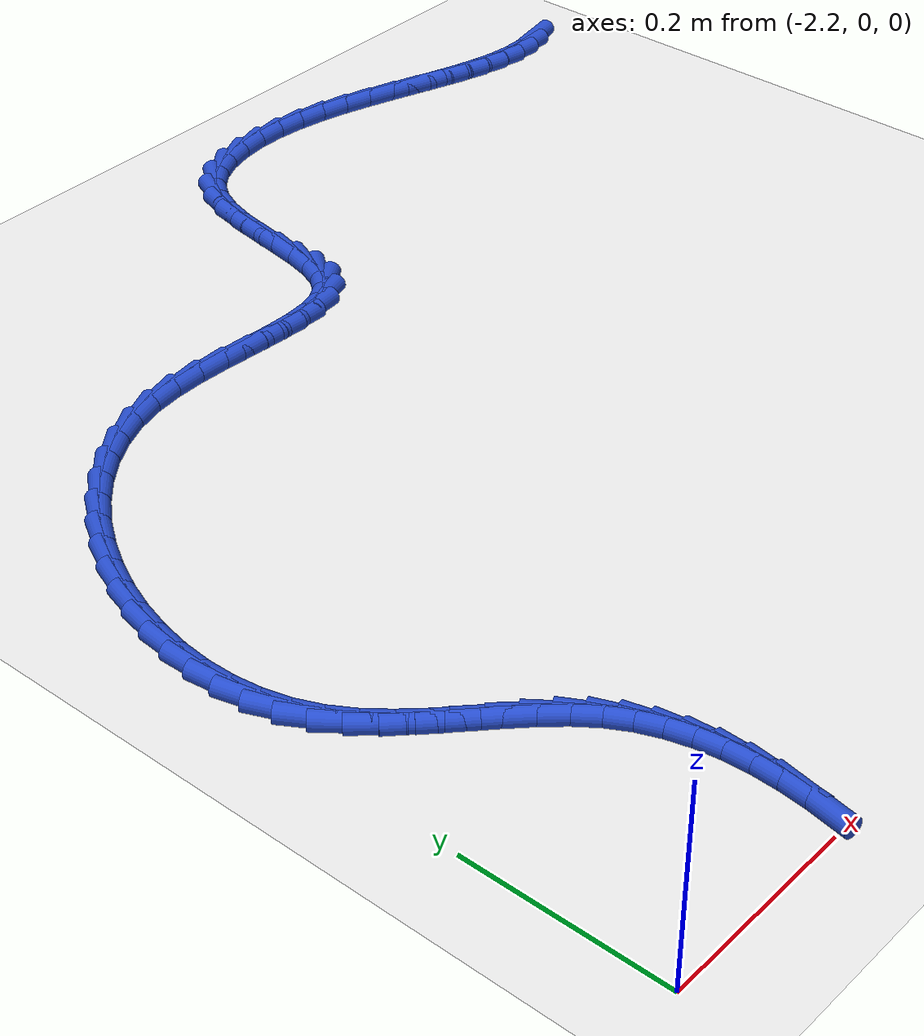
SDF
<sdf version="1.6">
 <world name="default">
  <model name="ground_plane">
   <static>1</static>
   <link name="link">
    <collision name="collision">
     <geometry><plane><normal>0 0 1</normal><size>100 100</size></plane></geometry>
     <surface><friction><ode><mu>100</mu><mu2>50</mu2></ode></friction></surface>
    </collision>
    <visual name="visual">
     <cast_shadows>0</cast_shadows>
     <geometry><plane><normal>0 0 1</normal><size>100 100</size></plane></geometry>
     <material>
      <script><uri>file://media/materials/scripts/gazebo.material</uri><name>Gazebo/WhiteGlow</name></script>
     </material>
    </visual>
   </link>
  </model>
  <model name="line">
   <link name="link_68">
    <pose>-1.128902015918738 0.9997562387554104 0.01 0 1.57 0.1784628266542008</pose>
    <collision name="collision">
     <geometry><cylinder><radius>0.01</radius><length>0.08</length></cylinder></geometry>
    </collision>
    <visual name="visual">
     <material>
      <script><name>Gazebo/Blue</name><uri>file://media/materials/scripts/gazebo.material</uri></script>
     </material>
     <geometry><cylinder><radius>0.01</radius><length>0.08</length></cylinder></geometry>
    </visual>
   </link>
   <link name="link_69">
    <pose>-1.1520053979540479 0.9955888068478382 0.01 0 1.57 0.02023123148100873</pose>
    <collision name="collision">
     <geometry><cylinder><radius>0.01</radius><length>0.08</length></cylinder></geometry>
    </collision>
    <visual name="visual">
     <material>
      <script><name>Gazebo/Blue</name><uri>file://media/materials/scripts/gazebo.material</uri></script>
     </material>
     <geometry><cylinder><radius>0.01</radius><length>0.08</length></cylinder></geometry>
    </visual>
   </link>
   <link name="link_70">
    <pose>-1.1761219607196456 0.9951008325057747 0.01 0 1.57 -0.1044988635622168</pose>
    <collision name="collision">
     <geometry><cylinder><radius>0.01</radius><length>0.08</length></cylinder></geometry>
    </collision>
    <visual name="visual">
     <material>
      <script><name>Gazebo/Blue</name><uri>file://media/materials/scripts/gazebo.material</uri></script>
     </material>
     <geometry><cylinder><radius>0.01</radius><length>0.08</length></cylinder></geometry>
    </visual>
   </link>
   <link name="link_71">
    <pose>-1.201182367129746 0.9977291907030209 0.01 0 1.57 -0.19719472050677767</pose>
    <collision name="collision">
     <geometry><cylinder><radius>0.01</radius><length>0.08</length></cylinder></geometry>
    </collision>
    <visual name="visual">
     <material>
      <script><name>Gazebo/Blue</name><uri>file://media/materials/scripts/gazebo.material</uri></script>
     </material>
     <geometry><cylinder><radius>0.01</radius><length>0.08</length></cylinder></geometry>
    </visual>
   </link>
   <link name="link_72">
    <pose>-1.2271172800985612 1.0029107564133763 0.01 0 1.57 -0.2620319175073464</pose>
    <collision name="collision">
     <geometry><cylinder><radius>0.01</radius><length>0.08</length></cylinder></geometry>
    </collision>
    <visual name="visual">
     <material>
      <script><name>Gazebo/Blue</name><uri>file://media/materials/scripts/gazebo.material</uri></script>
     </material>
     <geometry><cylinder><radius>0.01</radius><length>0.08</length></cylinder></geometry>
    </visual>
   </link>
   <link name="link_73">
    <pose>-1.2538573625403044 1.0100824046106411 0.01 0 1.57 -0.30329538065270734</pose>
    <collision name="collision">
     <geometry><cylinder><radius>0.01</radius><length>0.08</length></cylinder></geometry>
    </collision>
    <visual name="visual">
     <material>
      <script><name>Gazebo/Blue</name><uri>file://media/materials/scripts/gazebo.material</uri></script>
     </material>
     <geometry><cylinder><radius>0.01</radius><length>0.08</length></cylinder></geometry>
    </visual>
   </link>
   <link name="link_74">
    <pose>-1.2813332773691888 1.0186810102686155 0.01 0 1.57 -0.32435897336050806</pose>
    <collision name="collision">
     <geometry><cylinder><radius>0.01</radius><length>0.08</length></cylinder></geometry>
    </collision>
    <visual name="visual">
     <material>
      <script><name>Gazebo/Blue</name><uri>file://media/materials/scripts/gazebo.material</uri></script>
     </material>
     <geometry><cylinder><radius>0.01</radius><length>0.08</length></cylinder></geometry>
    </visual>
   </link>
   <link name="link_75">
    <pose>-1.3094756874994273 1.0281434483610994 0.01 0 1.57 -0.3274793681051528</pose>
    <collision name="collision">
     <geometry><cylinder><radius>0.01</radius><length>0.08</length></cylinder></geometry>
    </collision>
    <visual name="visual">
     <material>
      <script><name>Gazebo/Blue</name><uri>file://media/materials/scripts/gazebo.material</uri></script>
     </material>
     <geometry><cylinder><radius>0.01</radius><length>0.08</length></cylinder></geometry>
    </visual>
   </link>
   <link name="link_76">
    <pose>-1.338215255845233 1.037906593861893 0.01 0 1.57 -0.31388655361402984</pose>
    <collision name="collision">
     <geometry><cylinder><radius>0.01</radius><length>0.08</length></cylinder></geometry>
    </collision>
    <visual name="visual">
     <material>
      <script><name>Gazebo/Blue</name><uri>file://media/materials/scripts/gazebo.material</uri></script>
     </material>
     <geometry><cylinder><radius>0.01</radius><length>0.08</length></cylinder></geometry>
    </visual>
   </link>
   <link name="link_77">
    <pose>-1.3674826453208189 1.047407321744796 0.01 0 1.57 -0.2839534213955684</pose>
    <collision name="collision">
     <geometry><cylinder><radius>0.01</radius><length>0.08</length></cylinder></geometry>
    </collision>
    <visual name="visual">
     <material>
      <script><name>Gazebo/Blue</name><uri>file://media/materials/scripts/gazebo.material</uri></script>
     </material>
     <geometry><cylinder><radius>0.01</radius><length>0.08</length></cylinder></geometry>
    </visual>
   </link>
   <link name="link_78">
    <pose>-1.397208518840398 1.056082506983609 0.01 0 1.57 -0.23739386927225803</pose>
    <collision name="collision">
     <geometry><cylinder><radius>0.01</radius><length>0.08</length></cylinder></geometry>
    </collision>
    <visual name="visual">
     <material>
      <script><name>Gazebo/Blue</name><uri>file://media/materials/scripts/gazebo.material</uri></script>
     </material>
     <geometry><cylinder><radius>0.01</radius><length>0.08</length></cylinder></geometry>
    </visual>
   </link>
   <link name="link_79">
    <pose>-1.4273235393181836 1.0633690245521317 0.01 0 1.57 -0.17352077001351604</pose>
    <collision name="collision">
     <geometry><cylinder><radius>0.01</radius><length>0.08</length></cylinder></geometry>
    </collision>
    <visual name="visual">
     <material>
      <script><name>Gazebo/Blue</name><uri>file://media/materials/scripts/gazebo.material</uri></script>
     </material>
     <geometry><cylinder><radius>0.01</radius><length>0.08</length></cylinder></geometry>
    </visual>
   </link>
   <link name="link_80">
    <pose>-1.4577583696683878 1.0687037494241642 0.01 0 1.57 -0.091637704188161</pose>
    <collision name="collision">
     <geometry><cylinder><radius>0.01</radius><length>0.08</length></cylinder></geometry>
    </collision>
    <visual name="visual">
     <material>
      <script><name>Gazebo/Blue</name><uri>file://media/materials/scripts/gazebo.material</uri></script>
     </material>
     <geometry><cylinder><radius>0.01</radius><length>0.08</length></cylinder></geometry>
    </visual>
   </link>
   <link name="link_81">
    <pose>-1.4884435978979764 1.0715235708347657 0.01 0 1.57 0.007188545871210958</pose>
    <collision name="collision">
     <geometry><cylinder><radius>0.01</radius><length>0.08</length></cylinder></geometry>
    </collision>
    <visual name="visual">
     <material>
      <script><name>Gazebo/Blue</name><uri>file://media/materials/scripts/gazebo.material</uri></script>
     </material>
     <geometry><cylinder><radius>0.01</radius><length>0.08</length></cylinder></geometry>
    </visual>
   </link>
   <link name="link_82">
    <pose>-1.5191116329108416 1.0713031084608042 0.01 0 1.57 0.12260518350929396</pose>
    <collision name="collision">
     <geometry><cylinder><radius>0.01</radius><length>0.08</length></cylinder></geometry>
    </collision>
    <visual name="visual">
     <material>
      <script><name>Gazebo/Blue</name><uri>file://media/materials/scripts/gazebo.material</uri></script>
     </material>
     <geometry><cylinder><radius>0.01</radius><length>0.08</length></cylinder></geometry>
    </visual>
   </link>
   <link name="link_83">
    <pose>-1.5488664950908604 1.0676366180866856 0.01 0 1.57 0.26313598196929044</pose>
    <collision name="collision">
     <geometry><cylinder><radius>0.01</radius><length>0.08</length></cylinder></geometry>
    </collision>
    <visual name="visual">
     <material>
      <script><name>Gazebo/Blue</name><uri>file://media/materials/scripts/gazebo.material</uri></script>
     </material>
     <geometry><cylinder><radius>0.01</radius><length>0.08</length></cylinder></geometry>
    </visual>
   </link>
   <link name="link_84">
    <pose>-1.5766879469352846 1.0601420124055823 0.01 0 1.57 0.4399187052784023</pose>
    <collision name="collision">
     <geometry><cylinder><radius>0.01</radius><length>0.08</length></cylinder></geometry>
    </collision>
    <visual name="visual">
     <material>
      <script><name>Gazebo/Blue</name><uri>file://media/materials/scripts/gazebo.material</uri></script>
     </material>
     <geometry><cylinder><radius>0.01</radius><length>0.08</length></cylinder></geometry>
    </visual>
   </link>
   <link name="link_85">
    <pose>-1.6015557509413654 1.048437204110666 0.01 0 1.57 0.6624215820329582</pose>
    <collision name="collision">
     <geometry><cylinder><radius>0.01</radius><length>0.08</length></cylinder></geometry>
    </collision>
    <visual name="visual">
     <material>
      <script><name>Gazebo/Blue</name><uri>file://media/materials/scripts/gazebo.material</uri></script>
     </material>
     <geometry><cylinder><radius>0.01</radius><length>0.08</length></cylinder></geometry>
    </visual>
   </link>
   <link name="link_86">
    <pose>-1.6224496696063537 1.032140105895108 0.01 0 1.57 0.9260604812209172</pose>
    <collision name="collision">
     <geometry><cylinder><radius>0.01</radius><length>0.08</length></cylinder></geometry>
    </collision>
    <visual name="visual">
     <material>
      <script><name>Gazebo/Blue</name><uri>file://media/materials/scripts/gazebo.material</uri></script>
     </material>
     <geometry><cylinder><radius>0.01</radius><length>0.08</length></cylinder></geometry>
    </visual>
   </link>
   <link name="link_87">
    <pose>-1.6384091102255478 1.0109154998745653 0.01 0 1.57 1.1574450267556815</pose>
    <collision name="collision">
     <geometry><cylinder><radius>0.01</radius><length>0.08</length></cylinder></geometry>
    </collision>
    <visual name="visual">
     <material>
      <script><name>Gazebo/Blue</name><uri>file://media/materials/scripts/gazebo.material</uri></script>
     </material>
     <geometry><cylinder><radius>0.01</radius><length>0.08</length></cylinder></geometry>
    </visual>
   </link>
   <link name="link_88">
    <pose>-1.6496288101996746 0.9853360370249079 0.01 0 1.57 1.3065759386264886</pose>
    <collision name="collision">
     <geometry><cylinder><radius>0.01</radius><length>0.08</length></cylinder></geometry>
    </collision>
    <visual name="visual">
     <material>
      <script><name>Gazebo/Blue</name><uri>file://media/materials/scripts/gazebo.material</uri></script>
     </material>
     <geometry><cylinder><radius>0.01</radius><length>0.08</length></cylinder></geometry>
    </visual>
   </link>
   <link name="link_89">
    <pose>-1.6573500015796574 0.9567967132958185 0.01 0 1.57 1.389860307310818</pose>
    <collision name="collision">
     <geometry><cylinder><radius>0.01</radius><length>0.08</length></cylinder></geometry>
    </collision>
    <visual name="visual">
     <material>
      <script><name>Gazebo/Blue</name><uri>file://media/materials/scripts/gazebo.material</uri></script>
     </material>
     <geometry><cylinder><radius>0.01</radius><length>0.08</length></cylinder></geometry>
    </visual>
   </link>
   <link name="link_90">
    <pose>-1.6628517273051968 0.9267222367758183 0.01 0 1.57 1.4208190525033726</pose>
    <collision name="collision">
     <geometry><cylinder><radius>0.01</radius><length>0.08</length></cylinder></geometry>
    </collision>
    <visual name="visual">
     <material>
      <script><name>Gazebo/Blue</name><uri>file://media/materials/scripts/gazebo.material</uri></script>
     </material>
     <geometry><cylinder><radius>0.01</radius><length>0.08</length></cylinder></geometry>
    </visual>
   </link>
   <link name="link_91">
    <pose>-1.667413030315993 0.8965373155534293 0.01 0 1.57 1.4026784795362457</pose>
    <collision name="collision">
     <geometry><cylinder><radius>0.01</radius><length>0.08</length></cylinder></geometry>
    </collision>
    <visual name="visual">
     <material>
      <script><name>Gazebo/Blue</name><uri>file://media/materials/scripts/gazebo.material</uri></script>
     </material>
     <geometry><cylinder><radius>0.01</radius><length>0.08</length></cylinder></geometry>
    </visual>
   </link>
   <link name="link_92">
    <pose>-1.6723129535517458 0.8676666577171721 0.01 0 1.57 1.3263700624506318</pose>
    <collision name="collision">
     <geometry><cylinder><radius>0.01</radius><length>0.08</length></cylinder></geometry>
    </collision>
    <visual name="visual">
     <material>
      <script><name>Gazebo/Blue</name><uri>file://media/materials/scripts/gazebo.material</uri></script>
     </material>
     <geometry><cylinder><radius>0.01</radius><length>0.08</length></cylinder></geometry>
    </visual>
   </link>
   <link name="link_93">
    <pose>-1.6788305399521553 0.8415349713555683 0.01 0 1.57 1.1659263671518523</pose>
    <collision name="collision">
     <geometry><cylinder><radius>0.01</radius><length>0.08</length></cylinder></geometry>
    </collision>
    <visual name="visual">
     <material>
      <script><name>Gazebo/Blue</name><uri>file://media/materials/scripts/gazebo.material</uri></script>
     </material>
     <geometry><cylinder><radius>0.01</radius><length>0.08</length></cylinder></geometry>
    </visual>
   </link>
   <link name="link_94">
    <pose>-1.6882448324569215 0.8195669645571394 0.01 0 1.57 0.8798644883373692</pose>
    <collision name="collision">
     <geometry><cylinder><radius>0.01</radius><length>0.08</length></cylinder></geometry>
    </collision>
    <visual name="visual">
     <material>
      <script><name>Gazebo/Blue</name><uri>file://media/materials/scripts/gazebo.material</uri></script>
     </material>
     <geometry><cylinder><radius>0.01</radius><length>0.08</length></cylinder></geometry>
    </visual>
   </link>
   <link name="link_95">
    <pose>-1.7018130168154253 0.8031585471232914 0.01 0 1.57 0.5252991789234338</pose>
    <collision name="collision">
     <geometry><cylinder><radius>0.01</radius><length>0.08</length></cylinder></geometry>
    </collision>
    <visual name="visual">
     <material>
      <script><name>Gazebo/Blue</name><uri>file://media/materials/scripts/gazebo.material</uri></script>
     </material>
     <geometry><cylinder><radius>0.01</radius><length>0.08</length></cylinder></geometry>
    </visual>
   </link>
   <link name="link_96">
    <pose>-1.71997641975837 0.7926306808898904 0.01 0 1.57 0.25166398617376795</pose>
    <collision name="collision">
     <geometry><cylinder><radius>0.01</radius><length>0.08</length></cylinder></geometry>
    </collision>
    <visual name="visual">
     <material>
      <script><name>Gazebo/Blue</name><uri>file://media/materials/scripts/gazebo.material</uri></script>
     </material>
     <geometry><cylinder><radius>0.01</radius><length>0.08</length></cylinder></geometry>
    </visual>
   </link>
   <link name="link_97">
    <pose>-1.7421357095736396 0.7869331916872968 0.01 0 1.57 0.07855775562547603</pose>
    <collision name="collision">
     <geometry><cylinder><radius>0.01</radius><length>0.08</length></cylinder></geometry>
    </collision>
    <visual name="visual">
     <material>
      <script><name>Gazebo/Blue</name><uri>file://media/materials/scripts/gazebo.material</uri></script>
     </material>
     <geometry><cylinder><radius>0.01</radius><length>0.08</length></cylinder></geometry>
    </visual>
   </link>
   <link name="link_98">
    <pose>-1.7676239010746335 0.7849267674395708 0.01 0 1.57 -0.019369745558864695</pose>
    <collision name="collision">
     <geometry><cylinder><radius>0.01</radius><length>0.08</length></cylinder></geometry>
    </collision>
    <visual name="visual">
     <material>
      <script><name>Gazebo/Blue</name><uri>file://media/materials/scripts/gazebo.material</uri></script>
     </material>
     <geometry><cylinder><radius>0.01</radius><length>0.08</length></cylinder></geometry>
    </visual>
   </link>
   <link name="link_99">
    <pose>-1.79577400907475 0.7854720960707724 0.01 0 1.57 -0.06485391614003358</pose>
    <collision name="collision">
     <geometry><cylinder><radius>0.01</radius><length>0.08</length></cylinder></geometry>
    </collision>
    <visual name="visual">
     <material>
      <script><name>Gazebo/Blue</name><uri>file://media/materials/scripts/gazebo.material</uri></script>
     </material>
     <geometry><cylinder><radius>0.01</radius><length>0.08</length></cylinder></geometry>
    </visual>
   </link>
   <link name="link_100">
    <pose>-1.8259190483873897 0.7874298655049625 0.01 0 1.57 -0.07076459542782498</pose>
    <collision name="collision">
     <geometry><cylinder><radius>0.01</radius><length>0.08</length></cylinder></geometry>
    </collision>
    <visual name="visual">
     <material>
      <script><name>Gazebo/Blue</name><uri>file://media/materials/scripts/gazebo.material</uri></script>
     </material>
     <geometry><cylinder><radius>0.01</radius><length>0.08</length></cylinder></geometry>
    </visual>
   </link>
   <link name="link_101">
    <pose>-1.8573920338259489 0.7896607636662007 0.01 0 1.57 -0.04244406172097629</pose>
    <collision name="collision">
     <geometry><cylinder><radius>0.01</radius><length>0.08</length></cylinder></geometry>
    </collision>
    <visual name="visual">
     <material>
      <script><name>Gazebo/Blue</name><uri>file://media/materials/scripts/gazebo.material</uri></script>
     </material>
     <geometry><cylinder><radius>0.01</radius><length>0.08</length></cylinder></geometry>
    </visual>
   </link>
   <link name="link_102">
    <pose>-1.8895259802038278 0.7910254784785478 0.01 0 1.57 0.01994202005533072</pose>
    <collision name="collision">
     <geometry><cylinder><radius>0.01</radius><length>0.08</length></cylinder></geometry>
    </collision>
    <visual name="visual">
     <material>
      <script><name>Gazebo/Blue</name><uri>file://media/materials/scripts/gazebo.material</uri></script>
     </material>
     <geometry><cylinder><radius>0.01</radius><length>0.08</length></cylinder></geometry>
    </visual>
   </link>
   <link name="link_103">
    <pose>-1.9216539023344252 0.7903846978660638 0.01 0 1.57 0.1197736101527017</pose>
    <collision name="collision">
     <geometry><cylinder><radius>0.01</radius><length>0.08</length></cylinder></geometry>
    </collision>
    <visual name="visual">
     <material>
      <script><name>Gazebo/Blue</name><uri>file://media/materials/scripts/gazebo.material</uri></script>
     </material>
     <geometry><cylinder><radius>0.01</radius><length>0.08</length></cylinder></geometry>
    </visual>
   </link>
   <link name="link_104">
    <pose>-1.9531088150311393 0.7865991097528088 0.01 0 1.57 0.2551713370753415</pose>
    <collision name="collision">
     <geometry><cylinder><radius>0.01</radius><length>0.08</length></cylinder></geometry>
    </collision>
    <visual name="visual">
     <material>
      <script><name>Gazebo/Blue</name><uri>file://media/materials/scripts/gazebo.material</uri></script>
     </material>
     <geometry><cylinder><radius>0.01</radius><length>0.08</length></cylinder></geometry>
    </visual>
   </link>
   <link name="link_105">
    <pose>-1.9832912446681092 0.7787257887820521 0.01 0 1.57 0.39341340836434896</pose>
    <collision name="collision">
     <geometry><cylinder><radius>0.01</radius><length>0.08</length></cylinder></geometry>
    </collision>
    <visual name="visual">
     <material>
      <script><name>Gazebo/Blue</name><uri>file://media/materials/scripts/gazebo.material</uri></script>
     </material>
     <geometry><cylinder><radius>0.01</radius><length>0.08</length></cylinder></geometry>
    </visual>
   </link>
   <link name="link_106">
    <pose>-2.0119488002804995 0.7668314503807531 0.01 0 1.57 0.5219724922034519</pose>
    <collision name="collision">
     <geometry><cylinder><radius>0.01</radius><length>0.08</length></cylinder></geometry>
    </collision>
    <visual name="visual">
     <material>
      <script><name>Gazebo/Blue</name><uri>file://media/materials/scripts/gazebo.material</uri></script>
     </material>
     <geometry><cylinder><radius>0.01</radius><length>0.08</length></cylinder></geometry>
    </visual>
   </link>
   <link name="link_107">
    <pose>-2.038940318282932 0.7513063631554833 0.01 0 1.57 0.6403717103904953</pose>
    <collision name="collision">
     <geometry><cylinder><radius>0.01</radius><length>0.08</length></cylinder></geometry>
    </collision>
    <visual name="visual">
     <material>
      <script><name>Gazebo/Blue</name><uri>file://media/materials/scripts/gazebo.material</uri></script>
     </material>
     <geometry><cylinder><radius>0.01</radius><length>0.08</length></cylinder></geometry>
    </visual>
   </link>
   <link name="link_108">
    <pose>-2.0641246857917497 0.7325409432008005 0.01 0 1.57 0.7492775264098542</pose>
    <collision name="collision">
     <geometry><cylinder><radius>0.01</radius><length>0.08</length></cylinder></geometry>
    </collision>
    <visual name="visual">
     <material>
      <script><name>Gazebo/Blue</name><uri>file://media/materials/scripts/gazebo.material</uri></script>
     </material>
     <geometry><cylinder><radius>0.01</radius><length>0.08</length></cylinder></geometry>
    </visual>
   </link>
   <link name="link_109">
    <pose>-2.0873607899232915 0.7109256066112618 0.01 0 1.57 0.8500581855052285</pose>
    <collision name="collision">
     <geometry><cylinder><radius>0.01</radius><length>0.08</length></cylinder></geometry>
    </collision>
    <visual name="visual">
     <material>
      <script><name>Gazebo/Blue</name><uri>file://media/materials/scripts/gazebo.material</uri></script>
     </material>
     <geometry><cylinder><radius>0.01</radius><length>0.08</length></cylinder></geometry>
    </visual>
   </link>
   <link name="link_110">
    <pose>-2.1085075177939006 0.6868507694814256 0.01 0 1.57 0.9444441337811114</pose>
    <collision name="collision">
     <geometry><cylinder><radius>0.01</radius><length>0.08</length></cylinder></geometry>
    </collision>
    <visual name="visual">
     <material>
      <script><name>Gazebo/Blue</name><uri>file://media/materials/scripts/gazebo.material</uri></script>
     </material>
     <geometry><cylinder><radius>0.01</radius><length>0.08</length></cylinder></geometry>
    </visual>
   </link>
   <link name="link_111">
    <pose>-2.1274237565199146 0.6607068479058487 0.01 0 1.57 1.0343216997270226</pose>
    <collision name="collision">
     <geometry><cylinder><radius>0.01</radius><length>0.08</length></cylinder></geometry>
    </collision>
    <visual name="visual">
     <material>
      <script><name>Gazebo/Blue</name><uri>file://media/materials/scripts/gazebo.material</uri></script>
     </material>
     <geometry><cylinder><radius>0.01</radius><length>0.08</length></cylinder></geometry>
    </visual>
   </link>
   <link name="link_112">
    <pose>-2.143968393217678 0.6328842579790893 0.01 0 1.57 1.1216383106952974</pose>
    <collision name="collision">
     <geometry><cylinder><radius>0.01</radius><length>0.08</length></cylinder></geometry>
    </collision>
    <visual name="visual">
     <material>
      <script><name>Gazebo/Blue</name><uri>file://media/materials/scripts/gazebo.material</uri></script>
     </material>
     <geometry><cylinder><radius>0.01</radius><length>0.08</length></cylinder></geometry>
    </visual>
   </link>
   <link name="link_113">
    <pose>-2.1580003150035294 0.6037734157957051 0.01 0 1.57 1.2083834283639536</pose>
    <collision name="collision">
     <geometry><cylinder><radius>0.01</radius><length>0.08</length></cylinder></geometry>
    </collision>
    <visual name="visual">
     <material>
      <script><name>Gazebo/Blue</name><uri>file://media/materials/scripts/gazebo.material</uri></script>
     </material>
     <geometry><cylinder><radius>0.01</radius><length>0.08</length></cylinder></geometry>
    </visual>
   </link>
   <link name="link_114">
    <pose>-2.1693784089938117 0.5737647374502531 0.01 0 1.57 1.2966136727984907</pose>
    <collision name="collision">
     <geometry><cylinder><radius>0.01</radius><length>0.08</length></cylinder></geometry>
    </collision>
    <visual name="visual">
     <material>
      <script><name>Gazebo/Blue</name><uri>file://media/materials/scripts/gazebo.material</uri></script>
     </material>
     <geometry><cylinder><radius>0.01</radius><length>0.08</length></cylinder></geometry>
    </visual>
   </link>
   <link name="link_115">
    <pose>-2.177961562304865 0.5432486390372914 0.01 0 1.57 1.3884966808635393</pose>
    <collision name="collision">
     <geometry><cylinder><radius>0.01</radius><length>0.08</length></cylinder></geometry>
    </collision>
    <visual name="visual">
     <material>
      <script><name>Gazebo/Blue</name><uri>file://media/materials/scripts/gazebo.material</uri></script>
     </material>
     <geometry><cylinder><radius>0.01</radius><length>0.08</length></cylinder></geometry>
    </visual>
   </link>
   <link name="link_116">
    <pose>-2.1836086620530297 0.5126155366513773 0.01 0 1.57 1.4863481254413868</pose>
    <collision name="collision">
     <geometry><cylinder><radius>0.01</radius><length>0.08</length></cylinder></geometry>
    </collision>
    <visual name="visual">
     <material>
      <script><name>Gazebo/Blue</name><uri>file://media/materials/scripts/gazebo.material</uri></script>
     </material>
     <geometry><cylinder><radius>0.01</radius><length>0.08</length></cylinder></geometry>
    </visual>
   </link>
   <link name="link_117">
    <pose>-2.186178595354648 0.4822558463870685 0.01 0 1.57 -1.548966920383391</pose>
    <collision name="collision">
     <geometry><cylinder><radius>0.01</radius><length>0.08</length></cylinder></geometry>
    </collision>
    <visual name="visual">
     <material>
      <script><name>Gazebo/Blue</name><uri>file://media/materials/scripts/gazebo.material</uri></script>
     </material>
     <geometry><cylinder><radius>0.01</radius><length>0.08</length></cylinder></geometry>
    </visual>
   </link>
   <link name="link_118">
    <pose>-2.1855302493260593 0.4525599843389228 0.01 0 1.57 -1.4317718937933874</pose>
    <collision name="collision">
     <geometry><cylinder><radius>0.01</radius><length>0.08</length></cylinder></geometry>
    </collision>
    <visual name="visual">
     <material>
      <script><name>Gazebo/Blue</name><uri>file://media/materials/scripts/gazebo.material</uri></script>
     </material>
     <geometry><cylinder><radius>0.01</radius><length>0.08</length></cylinder></geometry>
    </visual>
   </link>
   <link name="link_119">
    <pose>-2.1815225110836067 0.42391836660149773 0.01 0 1.57 -1.3014363240052598</pose>
    <collision name="collision">
     <geometry><cylinder><radius>0.01</radius><length>0.08</length></cylinder></geometry>
    </collision>
    <visual name="visual">
     <material>
      <script><name>Gazebo/Blue</name><uri>file://media/materials/scripts/gazebo.material</uri></script>
     </material>
     <geometry><cylinder><radius>0.01</radius><length>0.08</length></cylinder></geometry>
    </visual>
   </link>
   <link name="link_120">
    <pose>-2.1740142677436287 0.3967214092693508 0.01 0 1.57 -1.1566190114400772</pose>
    <collision name="collision">
     <geometry><cylinder><radius>0.01</radius><length>0.08</length></cylinder></geometry>
    </collision>
    <visual name="visual">
     <material>
      <script><name>Gazebo/Blue</name><uri>file://media/materials/scripts/gazebo.material</uri></script>
     </material>
     <geometry><cylinder><radius>0.01</radius><length>0.08</length></cylinder></geometry>
    </visual>
   </link>
   <link name="link_121">
    <pose>-2.1628648542040825 0.3713591623716074 0.01 0 1.57 -1.0092241114671265</pose>
    <collision name="collision">
     <geometry><cylinder><radius>0.01</radius><length>0.08</length></cylinder></geometry>
    </collision>
    <visual name="visual">
     <material>
      <script><name>Gazebo/Blue</name><uri>file://media/materials/scripts/gazebo.material</uri></script>
     </material>
     <geometry><cylinder><radius>0.01</radius><length>0.08</length></cylinder></geometry>
    </visual>
   </link>
   <link name="link_122">
    <pose>-2.148180900840763 0.3480195096956059 0.01 0 1.57 -0.8926468486423966</pose>
    <collision name="collision">
     <geometry><cylinder><radius>0.01</radius><length>0.08</length></cylinder></geometry>
    </collision>
    <visual name="visual">
     <material>
      <script><name>Gazebo/Blue</name><uri>file://media/materials/scripts/gazebo.material</uri></script>
     </material>
     <geometry><cylinder><radius>0.01</radius><length>0.08</length></cylinder></geometry>
    </visual>
   </link>
   <link name="link_123">
    <pose>-2.130726275775079 0.3263530373548594 0.01 0 1.57 -0.8124755503966985</pose>
    <collision name="collision">
     <geometry><cylinder><radius>0.01</radius><length>0.08</length></cylinder></geometry>
    </collision>
    <visual name="visual">
     <material>
      <script><name>Gazebo/Blue</name><uri>file://media/materials/scripts/gazebo.material</uri></script>
     </material>
     <geometry><cylinder><radius>0.01</radius><length>0.08</length></cylinder></geometry>
    </visual>
   </link>
   <link name="link_124">
    <pose>-2.111372821579453 0.30592206139356615 0.01 0 1.57 -0.7667247554612334</pose>
    <collision name="collision">
     <geometry><cylinder><radius>0.01</radius><length>0.08</length></cylinder></geometry>
    </collision>
    <visual name="visual">
     <material>
      <script><name>Gazebo/Blue</name><uri>file://media/materials/scripts/gazebo.material</uri></script>
     </material>
     <geometry><cylinder><radius>0.01</radius><length>0.08</length></cylinder></geometry>
    </visual>
   </link>
   <link name="link_125">
    <pose>-2.090992380826307 0.2862888978559254 0.01 0 1.57 -0.7536933062901937</pose>
    <collision name="collision">
     <geometry><cylinder><radius>0.01</radius><length>0.08</length></cylinder></geometry>
    </collision>
    <visual name="visual">
     <material>
      <script><name>Gazebo/Blue</name><uri>file://media/materials/scripts/gazebo.material</uri></script>
     </material>
     <geometry><cylinder><radius>0.01</radius><length>0.08</length></cylinder></geometry>
    </visual>
   </link>
   <link name="link_126">
    <pose>-2.0704567960880627 0.2670158627861358 0.01 0 1.57 -0.7734431075174482</pose>
    <collision name="collision">
     <geometry><cylinder><radius>0.01</radius><length>0.08</length></cylinder></geometry>
    </collision>
    <visual name="visual">
     <material>
      <script><name>Gazebo/Blue</name><uri>file://media/materials/scripts/gazebo.material</uri></script>
     </material>
     <geometry><cylinder><radius>0.01</radius><length>0.08</length></cylinder></geometry>
    </visual>
   </link>
   <link name="link_127">
    <pose>-2.0506379099371412 0.2476652722283961 0.01 0 1.57 -0.8283022443340751</pose>
    <collision name="collision">
     <geometry><cylinder><radius>0.01</radius><length>0.08</length></cylinder></geometry>
    </collision>
    <visual name="visual">
     <material>
      <script><name>Gazebo/Blue</name><uri>file://media/materials/scripts/gazebo.material</uri></script>
     </material>
     <geometry><cylinder><radius>0.01</radius><length>0.08</length></cylinder></geometry>
    </visual>
   </link>
   <link name="link_128">
    <pose>-2.032407564945965 0.22779944222690524 0.01 0 1.57 -0.9225192787689549</pose>
    <collision name="collision">
     <geometry><cylinder><radius>0.01</radius><length>0.08</length></cylinder></geometry>
    </collision>
    <visual name="visual">
     <material>
      <script><name>Gazebo/Blue</name><uri>file://media/materials/scripts/gazebo.material</uri></script>
     </material>
     <geometry><cylinder><radius>0.01</radius><length>0.08</length></cylinder></geometry>
    </visual>
   </link>
   <link name="link_129">
    <pose>-2.016637588301835 0.20698069681615922 0.01 0 1.57 -1.0513303297569736</pose>
    <collision name="collision">
     <geometry><cylinder><radius>0.01</radius><length>0.08</length></cylinder></geometry>
    </collision>
    <visual name="visual">
     <material>
      <script><name>Gazebo/Blue</name><uri>file://media/materials/scripts/gazebo.material</uri></script>
     </material>
     <geometry><cylinder><radius>0.01</radius><length>0.08</length></cylinder></geometry>
    </visual>
   </link>
   <link name="link_130">
    <pose>-2.003997266110806 0.18487655019218108 0.01 0 1.57 -1.1825724912537559</pose>
    <collision name="collision">
     <geometry><cylinder><radius>0.01</radius><length>0.08</length></cylinder></geometry>
    </collision>
    <visual name="visual">
     <material>
      <script><name>Gazebo/Blue</name><uri>file://media/materials/scripts/gazebo.material</uri></script>
     </material>
     <geometry><cylinder><radius>0.01</radius><length>0.08</length></cylinder></geometry>
    </visual>
   </link>
   <link name="link_131">
    <pose>-1.99444617158626 0.16152310752206922 0.01 0 1.57 -1.305317212834985</pose>
    <collision name="collision">
     <geometry><cylinder><radius>0.01</radius><length>0.08</length></cylinder></geometry>
    </collision>
    <visual name="visual">
     <material>
      <script><name>Gazebo/Blue</name><uri>file://media/materials/scripts/gazebo.material</uri></script>
     </material>
     <geometry><cylinder><radius>0.01</radius><length>0.08</length></cylinder></geometry>
    </visual>
   </link>
   <link name="link_132">
    <pose>-1.9877885158334145 0.13703716162973034 0.01 0 1.57 -1.4167424458299431</pose>
    <collision name="collision">
     <geometry><cylinder><radius>0.01</radius><length>0.08</length></cylinder></geometry>
    </collision>
    <visual name="visual">
     <material>
      <script><name>Gazebo/Blue</name><uri>file://media/materials/scripts/gazebo.material</uri></script>
     </material>
     <geometry><cylinder><radius>0.01</radius><length>0.08</length></cylinder></geometry>
    </visual>
   </link>
   <link name="link_133">
    <pose>-1.983828509957487 0.1115355053390714 0.01 0 1.57 -1.5156208254390875</pose>
    <collision name="collision">
     <geometry><cylinder><radius>0.01</radius><length>0.08</length></cylinder></geometry>
    </collision>
    <visual name="visual">
     <material>
      <script><name>Gazebo/Blue</name><uri>file://media/materials/scripts/gazebo.material</uri></script>
     </material>
     <geometry><cylinder><radius>0.01</radius><length>0.08</length></cylinder></geometry>
    </visual>
   </link>
   <link name="link_134">
    <pose>-1.9823703650636944 0.08513493147399973 0.01 0 1.57 1.5396128029357528</pose>
    <collision name="collision">
     <geometry><cylinder><radius>0.01</radius><length>0.08</length></cylinder></geometry>
    </collision>
    <visual name="visual">
     <material>
      <script><name>Gazebo/Blue</name><uri>file://media/materials/scripts/gazebo.material</uri></script>
     </material>
     <geometry><cylinder><radius>0.01</radius><length>0.08</length></cylinder></geometry>
    </visual>
   </link>
   <link name="link_135">
    <pose>-1.983218292257253 0.057952232858421396 0.01 0 1.57 1.4649662881455234</pose>
    <collision name="collision">
     <geometry><cylinder><radius>0.01</radius><length>0.08</length></cylinder></geometry>
    </collision>
    <visual name="visual">
     <material>
      <script><name>Gazebo/Blue</name><uri>file://media/materials/scripts/gazebo.material</uri></script>
     </material>
     <geometry><cylinder><radius>0.01</radius><length>0.08</length></cylinder></geometry>
    </visual>
   </link>
   <link name="link_136">
    <pose>-1.9861765026433806 0.030104202316243275 0.01 0 1.57 1.4008565403103574</pose>
    <collision name="collision">
     <geometry><cylinder><radius>0.01</radius><length>0.08</length></cylinder></geometry>
    </collision>
    <visual name="visual">
     <material>
      <script><name>Gazebo/Blue</name><uri>file://media/materials/scripts/gazebo.material</uri></script>
     </material>
     <geometry><cylinder><radius>0.01</radius><length>0.08</length></cylinder></geometry>
    </visual>
   </link>
  </model>
 </world>
</sdf>
